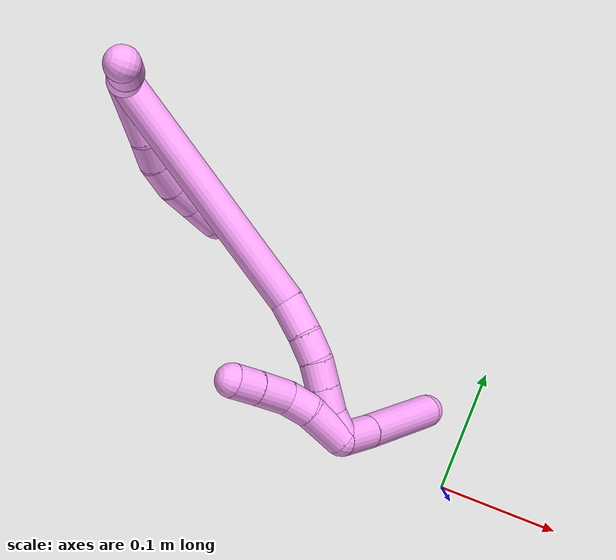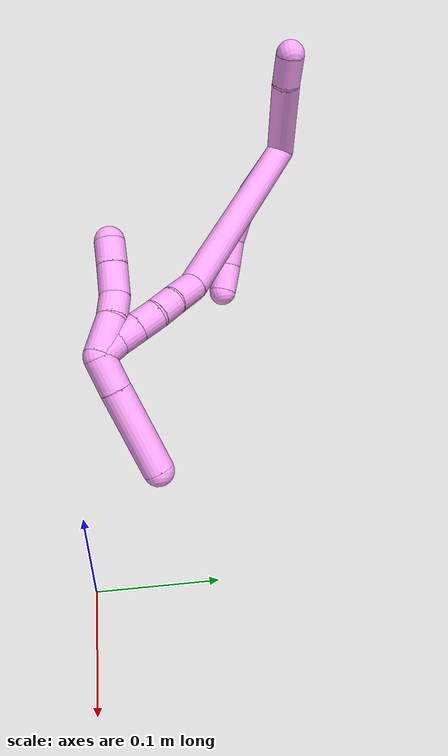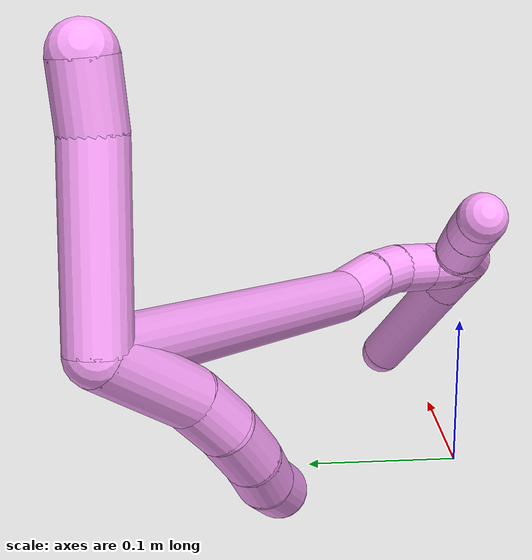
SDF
<sdf version="1.7">
 <world name="default">
  <model name="4">
   <static>0</static>
   <link name="4">
    <collision name="collision-cylinder-e_1_2_8">
     <pose>0.012642 -0.011438 -0.016557 2.53704 0.560908 1.49153</pose>
     <geometry><cylinder><radius>0.0125</radius><length>0.047529</length></cylinder></geometry>
     <surface>
      <friction><ode><mu>1.16</mu><mu2>1.16</mu2><slip1>0</slip1><slip2>0</slip2></ode></friction>
      <contact><ode><kp>1e+06</kp><kd>1</kd><max_vel>0</max_vel><min_depth>0.001</min_depth></ode></contact>
     </surface>
    </collision>
    <visual name="visual-cylinder-e_1_2_8">
     <pose>0.012642 -0.011438 -0.016557 2.53704 0.560908 1.49153</pose>
     <geometry><cylinder><radius>0.0125</radius><length>0.047529</length></cylinder></geometry>
     <material><ambient>1 0.65098 0.996078 1</ambient></material>
    </visual>
    <collision name="collision-cylinder-e_2_8_9">
     <pose>0.029707 -0.030229 -0.041064 2.39521 0.38778 0.929699</pose>
     <geometry><cylinder><radius>0.0125</radius><length>0.023397</length></cylinder></geometry>
     <surface>
      <friction><ode><mu>1.16</mu><mu2>1.16</mu2><slip1>0</slip1><slip2>0</slip2></ode></friction>
      <contact><ode><kp>1e+06</kp><kd>1</kd><max_vel>0</max_vel><min_depth>0.001</min_depth></ode></contact>
     </surface>
    </collision>
    <visual name="visual-cylinder-e_2_8_9">
     <pose>0.029707 -0.030229 -0.041064 2.39521 0.38778 0.929699</pose>
     <geometry><cylinder><radius>0.0125</radius><length>0.023397</length></cylinder></geometry>
     <material><ambient>1 0.65098 0.996078 1</ambient></material>
    </visual>
    <collision name="collision-cylinder-e_3_9_10">
     <pose>0.037611 -0.044721 -0.060256 2.57582 0.255628 0.832553</pose>
     <geometry><cylinder><radius>0.0125</radius><length>0.027526</length></cylinder></geometry>
     <surface>
      <friction><ode><mu>1.16</mu><mu2>1.16</mu2><slip1>0</slip1><slip2>0</slip2></ode></friction>
      <contact><ode><kp>1e+06</kp><kd>1</kd><max_vel>0</max_vel><min_depth>0.001</min_depth></ode></contact>
     </surface>
    </collision>
    <visual name="visual-cylinder-e_3_9_10">
     <pose>0.037611 -0.044721 -0.060256 2.57582 0.255628 0.832553</pose>
     <geometry><cylinder><radius>0.0125</radius><length>0.027526</length></cylinder></geometry>
     <material><ambient>1 0.65098 0.996078 1</ambient></material>
    </visual>
    <collision name="collision-cylinder-e_4_10_11">
     <pose>0.042995 -0.056828 -0.082797 2.72735 0.15307 0.699827</pose>
     <geometry><cylinder><radius>0.0125</radius><length>0.024981</length></cylinder></geometry>
     <surface>
      <friction><ode><mu>1.16</mu><mu2>1.16</mu2><slip1>0</slip1><slip2>0</slip2></ode></friction>
      <contact><ode><kp>1e+06</kp><kd>1</kd><max_vel>0</max_vel><min_depth>0.001</min_depth></ode></contact>
     </surface>
    </collision>
    <visual name="visual-cylinder-e_4_10_11">
     <pose>0.042995 -0.056828 -0.082797 2.72735 0.15307 0.699827</pose>
     <geometry><cylinder><radius>0.0125</radius><length>0.024981</length></cylinder></geometry>
     <material><ambient>1 0.65098 0.996078 1</ambient></material>
    </visual>
    <collision name="collision-cylinder-e_5_11_6">
     <pose>0.048483 -0.065 -0.10648 2.88839 0.273112 1.64729</pose>
     <geometry><cylinder><radius>0.0125</radius><length>0.026567</length></cylinder></geometry>
     <surface>
      <friction><ode><mu>1.16</mu><mu2>1.16</mu2><slip1>0</slip1><slip2>0</slip2></ode></friction>
      <contact><ode><kp>1e+06</kp><kd>1</kd><max_vel>0</max_vel><min_depth>0.001</min_depth></ode></contact>
     </surface>
    </collision>
    <visual name="visual-cylinder-e_5_11_6">
     <pose>0.048483 -0.065 -0.10648 2.88839 0.273112 1.64729</pose>
     <geometry><cylinder><radius>0.0125</radius><length>0.026567</length></cylinder></geometry>
     <material><ambient>1 0.65098 0.996078 1</ambient></material>
    </visual>
    <collision name="collision-cylinder-e_1_2_12">
     <pose>0.013869 0.031736 0.013078 -1.17992 0.38401 -0.258845</pose>
     <geometry><cylinder><radius>0.0125</radius><length>0.074041</length></cylinder></geometry>
     <surface>
      <friction><ode><mu>1.16</mu><mu2>1.16</mu2><slip1>0</slip1><slip2>0</slip2></ode></friction>
      <contact><ode><kp>1e+06</kp><kd>1</kd><max_vel>0</max_vel><min_depth>0.001</min_depth></ode></contact>
     </surface>
    </collision>
    <visual name="visual-cylinder-e_1_2_12">
     <pose>0.013869 0.031736 0.013078 -1.17992 0.38401 -0.258845</pose>
     <geometry><cylinder><radius>0.0125</radius><length>0.074041</length></cylinder></geometry>
     <material><ambient>1 0.65098 0.996078 1</ambient></material>
    </visual>
    <collision name="collision-cylinder-e_2_12_5">
     <pose>0.03102 0.074366 0.0324 -1.0503 0.255579 -0.148625</pose>
     <geometry><cylinder><radius>0.0125</radius><length>0.025959</length></cylinder></geometry>
     <surface>
      <friction><ode><mu>1.16</mu><mu2>1.16</mu2><slip1>0</slip1><slip2>0</slip2></ode></friction>
      <contact><ode><kp>1e+06</kp><kd>1</kd><max_vel>0</max_vel><min_depth>0.001</min_depth></ode></contact>
     </surface>
    </collision>
    <visual name="visual-cylinder-e_2_12_5">
     <pose>0.03102 0.074366 0.0324 -1.0503 0.255579 -0.148625</pose>
     <geometry><cylinder><radius>0.0125</radius><length>0.025959</length></cylinder></geometry>
     <material><ambient>1 0.65098 0.996078 1</ambient></material>
    </visual>
    <collision name="collision-cylinder-e_1_2_13">
     <pose>0.062427 0.001452 -0.072707 -3.12162 0.709373 -3.08768</pose>
     <geometry><cylinder><radius>0.0125</radius><length>0.191683</length></cylinder></geometry>
     <surface>
      <friction><ode><mu>1.16</mu><mu2>1.16</mu2><slip1>0</slip1><slip2>0</slip2></ode></friction>
      <contact><ode><kp>1e+06</kp><kd>1</kd><max_vel>0</max_vel><min_depth>0.001</min_depth></ode></contact>
     </surface>
    </collision>
    <visual name="visual-cylinder-e_1_2_13">
     <pose>0.062427 0.001452 -0.072707 -3.12162 0.709373 -3.08768</pose>
     <geometry><cylinder><radius>0.0125</radius><length>0.191683</length></cylinder></geometry>
     <material><ambient>1 0.65098 0.996078 1</ambient></material>
    </visual>
    <collision name="collision-cylinder-e_2_13_14">
     <pose>0.136331 0.005173 -0.152951 -2.84922 0.969668 -2.59649</pose>
     <geometry><cylinder><radius>0.0125</radius><length>0.027832</length></cylinder></geometry>
     <surface>
      <friction><ode><mu>1.16</mu><mu2>1.16</mu2><slip1>0</slip1><slip2>0</slip2></ode></friction>
      <contact><ode><kp>1e+06</kp><kd>1</kd><max_vel>0</max_vel><min_depth>0.001</min_depth></ode></contact>
     </surface>
    </collision>
    <visual name="visual-cylinder-e_2_13_14">
     <pose>0.136331 0.005173 -0.152951 -2.84922 0.969668 -2.59649</pose>
     <geometry><cylinder><radius>0.0125</radius><length>0.027832</length></cylinder></geometry>
     <material><ambient>1 0.65098 0.996078 1</ambient></material>
    </visual>
    <collision name="collision-cylinder-e_3_14_15">
     <pose>0.15614 0.007514 -0.166161 -3.12879 0.972958 -3.11739</pose>
     <geometry><cylinder><radius>0.0125</radius><length>0.020163</length></cylinder></geometry>
     <surface>
      <friction><ode><mu>1.16</mu><mu2>1.16</mu2><slip1>0</slip1><slip2>0</slip2></ode></friction>
      <contact><ode><kp>1e+06</kp><kd>1</kd><max_vel>0</max_vel><min_depth>0.001</min_depth></ode></contact>
     </surface>
    </collision>
    <visual name="visual-cylinder-e_3_14_15">
     <pose>0.15614 0.007514 -0.166161 -3.12879 0.972958 -3.11739</pose>
     <geometry><cylinder><radius>0.0125</radius><length>0.020163</length></cylinder></geometry>
     <material><ambient>1 0.65098 0.996078 1</ambient></material>
    </visual>
    <collision name="collision-cylinder-e_4_15_16">
     <pose>0.173026 0.005657 -0.17687 2.77562 1.00827 2.49431</pose>
     <geometry><cylinder><radius>0.0125</radius><length>0.020222</length></cylinder></geometry>
     <surface>
      <friction><ode><mu>1.16</mu><mu2>1.16</mu2><slip1>0</slip1><slip2>0</slip2></ode></friction>
      <contact><ode><kp>1e+06</kp><kd>1</kd><max_vel>0</max_vel><min_depth>0.001</min_depth></ode></contact>
     </surface>
    </collision>
    <visual name="visual-cylinder-e_4_15_16">
     <pose>0.173026 0.005657 -0.17687 2.77562 1.00827 2.49431</pose>
     <geometry><cylinder><radius>0.0125</radius><length>0.020222</length></cylinder></geometry>
     <material><ambient>1 0.65098 0.996078 1</ambient></material>
    </visual>
    <collision name="collision-cylinder-e_5_16_17">
     <pose>0.19008 0.001819 -0.186915 2.77758 1.00817 2.49754</pose>
     <geometry><cylinder><radius>0.0125</radius><length>0.0201</length></cylinder></geometry>
     <surface>
      <friction><ode><mu>1.16</mu><mu2>1.16</mu2><slip1>0</slip1><slip2>0</slip2></ode></friction>
      <contact><ode><kp>1e+06</kp><kd>1</kd><max_vel>0</max_vel><min_depth>0.001</min_depth></ode></contact>
     </surface>
    </collision>
    <visual name="visual-cylinder-e_5_16_17">
     <pose>0.19008 0.001819 -0.186915 2.77758 1.00817 2.49754</pose>
     <geometry><cylinder><radius>0.0125</radius><length>0.0201</length></cylinder></geometry>
     <material><ambient>1 0.65098 0.996078 1</ambient></material>
    </visual>
    <collision name="collision-cylinder-e_6_17_1">
     <pose>0.206647 -6e-05 -0.197835 -3.13662 0.938445 -3.13178</pose>
     <geometry><cylinder><radius>0.0125</radius><length>0.020001</length></cylinder></geometry>
     <surface>
      <friction><ode><mu>1.16</mu><mu2>1.16</mu2><slip1>0</slip1><slip2>0</slip2></ode></friction>
      <contact><ode><kp>1e+06</kp><kd>1</kd><max_vel>0</max_vel><min_depth>0.001</min_depth></ode></contact>
     </surface>
    </collision>
    <visual name="visual-cylinder-e_6_17_1">
     <pose>0.206647 -6e-05 -0.197835 -3.13662 0.938445 -3.13178</pose>
     <geometry><cylinder><radius>0.0125</radius><length>0.020001</length></cylinder></geometry>
     <material><ambient>1 0.65098 0.996078 1</ambient></material>
    </visual>
    <collision name="collision-cylinder-e_1_1_18">
     <pose>0.208838 -0.002662 -0.216526 2.93855 -0.423135 -2.25583</pose>
     <geometry><cylinder><radius>0.0125</radius><length>0.028621</length></cylinder></geometry>
     <surface>
      <friction><ode><mu>1.16</mu><mu2>1.16</mu2><slip1>0</slip1><slip2>0</slip2></ode></friction>
      <contact><ode><kp>1e+06</kp><kd>1</kd><max_vel>0</max_vel><min_depth>0.001</min_depth></ode></contact>
     </surface>
    </collision>
    <visual name="visual-cylinder-e_1_1_18">
     <pose>0.208838 -0.002662 -0.216526 2.93855 -0.423135 -2.25583</pose>
     <geometry><cylinder><radius>0.0125</radius><length>0.028621</length></cylinder></geometry>
     <material><ambient>1 0.65098 0.996078 1</ambient></material>
    </visual>
    <collision name="collision-cylinder-e_2_18_4">
     <pose>0.18702 -0.012771 -0.26035 2.90521 -0.463037 -2.2084</pose>
     <geometry><cylinder><radius>0.0125</radius><length>0.071379</length></cylinder></geometry>
     <surface>
      <friction><ode><mu>1.16</mu><mu2>1.16</mu2><slip1>0</slip1><slip2>0</slip2></ode></friction>
      <contact><ode><kp>1e+06</kp><kd>1</kd><max_vel>0</max_vel><min_depth>0.001</min_depth></ode></contact>
     </surface>
    </collision>
    <visual name="visual-cylinder-e_2_18_4">
     <pose>0.18702 -0.012771 -0.26035 2.90521 -0.463037 -2.2084</pose>
     <geometry><cylinder><radius>0.0125</radius><length>0.071379</length></cylinder></geometry>
     <material><ambient>1 0.65098 0.996078 1</ambient></material>
    </visual>
    <collision name="collision-cylinder-e_1_1_19">
     <pose>0.207632 0.001041 -0.188797 -0.071577 -0.441406 0.016065</pose>
     <geometry><cylinder><radius>0.0125</radius><length>0.033152</length></cylinder></geometry>
     <surface>
      <friction><ode><mu>1.16</mu><mu2>1.16</mu2><slip1>0</slip1><slip2>0</slip2></ode></friction>
      <contact><ode><kp>1e+06</kp><kd>1</kd><max_vel>0</max_vel><min_depth>0.001</min_depth></ode></contact>
     </surface>
    </collision>
    <visual name="visual-cylinder-e_1_1_19">
     <pose>0.207632 0.001041 -0.188797 -0.071577 -0.441406 0.016065</pose>
     <geometry><cylinder><radius>0.0125</radius><length>0.033152</length></cylinder></geometry>
     <material><ambient>1 0.65098 0.996078 1</ambient></material>
    </visual>
    <collision name="collision-cylinder-e_2_19_20">
     <pose>0.19747 0.001133 -0.164183 0.101053 -0.307107 -0.015653</pose>
     <geometry><cylinder><radius>0.0125</radius><length>0.020382</length></cylinder></geometry>
     <surface>
      <friction><ode><mu>1.16</mu><mu2>1.16</mu2><slip1>0</slip1><slip2>0</slip2></ode></friction>
      <contact><ode><kp>1e+06</kp><kd>1</kd><max_vel>0</max_vel><min_depth>0.001</min_depth></ode></contact>
     </surface>
    </collision>
    <visual name="visual-cylinder-e_2_19_20">
     <pose>0.19747 0.001133 -0.164183 0.101053 -0.307107 -0.015653</pose>
     <geometry><cylinder><radius>0.0125</radius><length>0.020382</length></cylinder></geometry>
     <material><ambient>1 0.65098 0.996078 1</ambient></material>
    </visual>
    <collision name="collision-cylinder-e_3_20_21">
     <pose>0.193986 0.00122 -0.141654 -0.082807 -0.031223 0.001294</pose>
     <geometry><cylinder><radius>0.0125</radius><length>0.02583</length></cylinder></geometry>
     <surface>
      <friction><ode><mu>1.16</mu><mu2>1.16</mu2><slip1>0</slip1><slip2>0</slip2></ode></friction>
      <contact><ode><kp>1e+06</kp><kd>1</kd><max_vel>0</max_vel><min_depth>0.001</min_depth></ode></contact>
     </surface>
    </collision>
    <visual name="visual-cylinder-e_3_20_21">
     <pose>0.193986 0.00122 -0.141654 -0.082807 -0.031223 0.001294</pose>
     <geometry><cylinder><radius>0.0125</radius><length>0.02583</length></cylinder></geometry>
     <material><ambient>1 0.65098 0.996078 1</ambient></material>
    </visual>
    <collision name="collision-cylinder-e_4_21_3">
     <pose>0.193381 0.002869 -0.11849 -0.056351 -0.019573 0.000552</pose>
     <geometry><cylinder><radius>0.0125</radius><length>0.020636</length></cylinder></geometry>
     <surface>
      <friction><ode><mu>1.16</mu><mu2>1.16</mu2><slip1>0</slip1><slip2>0</slip2></ode></friction>
      <contact><ode><kp>1e+06</kp><kd>1</kd><max_vel>0</max_vel><min_depth>0.001</min_depth></ode></contact>
     </surface>
    </collision>
    <visual name="visual-cylinder-e_4_21_3">
     <pose>0.193381 0.002869 -0.11849 -0.056351 -0.019573 0.000552</pose>
     <geometry><cylinder><radius>0.0125</radius><length>0.020636</length></cylinder></geometry>
     <material><ambient>1 0.65098 0.996078 1</ambient></material>
    </visual>
    <collision name="collision-sphere-3">
     <pose>0.193179 0.00345 -0.108191 0 -0 0</pose>
     <geometry><sphere><radius>0.0125</radius></sphere></geometry>
     <surface>
      <friction><ode><mu>1.16</mu><mu2>1.16</mu2><slip1>0</slip1><slip2>0</slip2></ode></friction>
      <contact><ode><kp>1e+06</kp><kd>1</kd><max_vel>0</max_vel><min_depth>0.001</min_depth></ode></contact>
     </surface>
    </collision>
    <visual name="visual-sphere-3">
     <pose>0.193179 0.00345 -0.108191 0 -0 0</pose>
     <geometry><sphere><radius>0.0125</radius></sphere></geometry>
     <material><ambient>1 0.65098 0.996078 1</ambient></material>
    </visual>
    <collision name="collision-sphere-21">
     <pose>0.193583 0.002288 -0.12879 0 -0 0</pose>
     <geometry><sphere><radius>0.0125</radius></sphere></geometry>
     <surface>
      <friction><ode><mu>1.16</mu><mu2>1.16</mu2><slip1>0</slip1><slip2>0</slip2></ode></friction>
      <contact><ode><kp>1e+06</kp><kd>1</kd><max_vel>0</max_vel><min_depth>0.001</min_depth></ode></contact>
     </surface>
    </collision>
    <visual name="visual-sphere-21">
     <pose>0.193583 0.002288 -0.12879 0 -0 0</pose>
     <geometry><sphere><radius>0.0125</radius></sphere></geometry>
     <material><ambient>1 0.65098 0.996078 1</ambient></material>
    </visual>
    <collision name="collision-sphere-20">
     <pose>0.194389 0.000153 -0.154519 0 -0 0</pose>
     <geometry><sphere><radius>0.0125</radius></sphere></geometry>
     <surface>
      <friction><ode><mu>1.16</mu><mu2>1.16</mu2><slip1>0</slip1><slip2>0</slip2></ode></friction>
      <contact><ode><kp>1e+06</kp><kd>1</kd><max_vel>0</max_vel><min_depth>0.001</min_depth></ode></contact>
     </surface>
    </collision>
    <visual name="visual-sphere-20">
     <pose>0.194389 0.000153 -0.154519 0 -0 0</pose>
     <geometry><sphere><radius>0.0125</radius></sphere></geometry>
     <material><ambient>1 0.65098 0.996078 1</ambient></material>
    </visual>
    <collision name="collision-sphere-19">
     <pose>0.200551 0.002113 -0.173848 0 -0 0</pose>
     <geometry><sphere><radius>0.0125</radius></sphere></geometry>
     <surface>
      <friction><ode><mu>1.16</mu><mu2>1.16</mu2><slip1>0</slip1><slip2>0</slip2></ode></friction>
      <contact><ode><kp>1e+06</kp><kd>1</kd><max_vel>0</max_vel><min_depth>0.001</min_depth></ode></contact>
     </surface>
    </collision>
    <visual name="visual-sphere-19">
     <pose>0.200551 0.002113 -0.173848 0 -0 0</pose>
     <geometry><sphere><radius>0.0125</radius></sphere></geometry>
     <material><ambient>1 0.65098 0.996078 1</ambient></material>
    </visual>
    <collision name="collision-sphere-6">
     <pose>0.052065 -0.068205 -0.118863 0 -0 0</pose>
     <geometry><sphere><radius>0.0125</radius></sphere></geometry>
     <surface>
      <friction><ode><mu>1.16</mu><mu2>1.16</mu2><slip1>0</slip1><slip2>0</slip2></ode></friction>
      <contact><ode><kp>1e+06</kp><kd>1</kd><max_vel>0</max_vel><min_depth>0.001</min_depth></ode></contact>
     </surface>
    </collision>
    <visual name="visual-sphere-6">
     <pose>0.052065 -0.068205 -0.118863 0 -0 0</pose>
     <geometry><sphere><radius>0.0125</radius></sphere></geometry>
     <material><ambient>1 0.65098 0.996078 1</ambient></material>
    </visual>
    <collision name="collision-sphere-11">
     <pose>0.0449 -0.061796 -0.094097 0 -0 0</pose>
     <geometry><sphere><radius>0.0125</radius></sphere></geometry>
     <surface>
      <friction><ode><mu>1.16</mu><mu2>1.16</mu2><slip1>0</slip1><slip2>0</slip2></ode></friction>
      <contact><ode><kp>1e+06</kp><kd>1</kd><max_vel>0</max_vel><min_depth>0.001</min_depth></ode></contact>
     </surface>
    </collision>
    <visual name="visual-sphere-11">
     <pose>0.0449 -0.061796 -0.094097 0 -0 0</pose>
     <geometry><sphere><radius>0.0125</radius></sphere></geometry>
     <material><ambient>1 0.65098 0.996078 1</ambient></material>
    </visual>
    <collision name="collision-sphere-10">
     <pose>0.041091 -0.051859 -0.071496 0 -0 0</pose>
     <geometry><sphere><radius>0.0125</radius></sphere></geometry>
     <surface>
      <friction><ode><mu>1.16</mu><mu2>1.16</mu2><slip1>0</slip1><slip2>0</slip2></ode></friction>
      <contact><ode><kp>1e+06</kp><kd>1</kd><max_vel>0</max_vel><min_depth>0.001</min_depth></ode></contact>
     </surface>
    </collision>
    <visual name="visual-sphere-10">
     <pose>0.041091 -0.051859 -0.071496 0 -0 0</pose>
     <geometry><sphere><radius>0.0125</radius></sphere></geometry>
     <material><ambient>1 0.65098 0.996078 1</ambient></material>
    </visual>
    <collision name="collision-sphere-9">
     <pose>0.034131 -0.037583 -0.049015 0 -0 0</pose>
     <geometry><sphere><radius>0.0125</radius></sphere></geometry>
     <surface>
      <friction><ode><mu>1.16</mu><mu2>1.16</mu2><slip1>0</slip1><slip2>0</slip2></ode></friction>
      <contact><ode><kp>1e+06</kp><kd>1</kd><max_vel>0</max_vel><min_depth>0.001</min_depth></ode></contact>
     </surface>
    </collision>
    <visual name="visual-sphere-9">
     <pose>0.034131 -0.037583 -0.049015 0 -0 0</pose>
     <geometry><sphere><radius>0.0125</radius></sphere></geometry>
     <material><ambient>1 0.65098 0.996078 1</ambient></material>
    </visual>
    <collision name="collision-sphere-2">
     <geometry><sphere><radius>0.0125</radius></sphere></geometry>
     <surface>
      <friction><ode><mu>1.16</mu><mu2>1.16</mu2><slip1>0</slip1><slip2>0</slip2></ode></friction>
      <contact><ode><kp>1e+06</kp><kd>1</kd><max_vel>0</max_vel><min_depth>0.001</min_depth></ode></contact>
     </surface>
    </collision>
    <visual name="visual-sphere-2">
     <geometry><sphere><radius>0.0125</radius></sphere></geometry>
     <material><ambient>1 0.65098 0.996078 1</ambient></material>
    </visual>
    <collision name="collision-sphere-8">
     <pose>0.025283 -0.022876 -0.033113 0 -0 0</pose>
     <geometry><sphere><radius>0.0125</radius></sphere></geometry>
     <surface>
      <friction><ode><mu>1.16</mu><mu2>1.16</mu2><slip1>0</slip1><slip2>0</slip2></ode></friction>
      <contact><ode><kp>1e+06</kp><kd>1</kd><max_vel>0</max_vel><min_depth>0.001</min_depth></ode></contact>
     </surface>
    </collision>
    <visual name="visual-sphere-8">
     <pose>0.025283 -0.022876 -0.033113 0 -0 0</pose>
     <geometry><sphere><radius>0.0125</radius></sphere></geometry>
     <material><ambient>1 0.65098 0.996078 1</ambient></material>
    </visual>
    <collision name="collision-sphere-12">
     <pose>0.027739 0.063471 0.026155 0 -0 0</pose>
     <geometry><sphere><radius>0.0125</radius></sphere></geometry>
     <surface>
      <friction><ode><mu>1.16</mu><mu2>1.16</mu2><slip1>0</slip1><slip2>0</slip2></ode></friction>
      <contact><ode><kp>1e+06</kp><kd>1</kd><max_vel>0</max_vel><min_depth>0.001</min_depth></ode></contact>
     </surface>
    </collision>
    <visual name="visual-sphere-12">
     <pose>0.027739 0.063471 0.026155 0 -0 0</pose>
     <geometry><sphere><radius>0.0125</radius></sphere></geometry>
     <material><ambient>1 0.65098 0.996078 1</ambient></material>
    </visual>
    <collision name="collision-sphere-5">
     <pose>0.034301 0.085261 0.038645 0 -0 0</pose>
     <geometry><sphere><radius>0.0125</radius></sphere></geometry>
     <surface>
      <friction><ode><mu>1.16</mu><mu2>1.16</mu2><slip1>0</slip1><slip2>0</slip2></ode></friction>
      <contact><ode><kp>1e+06</kp><kd>1</kd><max_vel>0</max_vel><min_depth>0.001</min_depth></ode></contact>
     </surface>
    </collision>
    <visual name="visual-sphere-5">
     <pose>0.034301 0.085261 0.038645 0 -0 0</pose>
     <geometry><sphere><radius>0.0125</radius></sphere></geometry>
     <material><ambient>1 0.65098 0.996078 1</ambient></material>
    </visual>
    <collision name="collision-sphere-13">
     <pose>0.124854 0.002905 -0.145414 0 -0 0</pose>
     <geometry><sphere><radius>0.0125</radius></sphere></geometry>
     <surface>
      <friction><ode><mu>1.16</mu><mu2>1.16</mu2><slip1>0</slip1><slip2>0</slip2></ode></friction>
      <contact><ode><kp>1e+06</kp><kd>1</kd><max_vel>0</max_vel><min_depth>0.001</min_depth></ode></contact>
     </surface>
    </collision>
    <visual name="visual-sphere-13">
     <pose>0.124854 0.002905 -0.145414 0 -0 0</pose>
     <geometry><sphere><radius>0.0125</radius></sphere></geometry>
     <material><ambient>1 0.65098 0.996078 1</ambient></material>
    </visual>
    <collision name="collision-sphere-14">
     <pose>0.147807 0.007441 -0.160487 0 -0 0</pose>
     <geometry><sphere><radius>0.0125</radius></sphere></geometry>
     <surface>
      <friction><ode><mu>1.16</mu><mu2>1.16</mu2><slip1>0</slip1><slip2>0</slip2></ode></friction>
      <contact><ode><kp>1e+06</kp><kd>1</kd><max_vel>0</max_vel><min_depth>0.001</min_depth></ode></contact>
     </surface>
    </collision>
    <visual name="visual-sphere-14">
     <pose>0.147807 0.007441 -0.160487 0 -0 0</pose>
     <geometry><sphere><radius>0.0125</radius></sphere></geometry>
     <material><ambient>1 0.65098 0.996078 1</ambient></material>
    </visual>
    <collision name="collision-sphere-15">
     <pose>0.164473 0.007587 -0.171835 0 -0 0</pose>
     <geometry><sphere><radius>0.0125</radius></sphere></geometry>
     <surface>
      <friction><ode><mu>1.16</mu><mu2>1.16</mu2><slip1>0</slip1><slip2>0</slip2></ode></friction>
      <contact><ode><kp>1e+06</kp><kd>1</kd><max_vel>0</max_vel><min_depth>0.001</min_depth></ode></contact>
     </surface>
    </collision>
    <visual name="visual-sphere-15">
     <pose>0.164473 0.007587 -0.171835 0 -0 0</pose>
     <geometry><sphere><radius>0.0125</radius></sphere></geometry>
     <material><ambient>1 0.65098 0.996078 1</ambient></material>
    </visual>
    <collision name="collision-sphere-16">
     <pose>0.181579 0.003727 -0.181906 0 -0 0</pose>
     <geometry><sphere><radius>0.0125</radius></sphere></geometry>
     <surface>
      <friction><ode><mu>1.16</mu><mu2>1.16</mu2><slip1>0</slip1><slip2>0</slip2></ode></friction>
      <contact><ode><kp>1e+06</kp><kd>1</kd><max_vel>0</max_vel><min_depth>0.001</min_depth></ode></contact>
     </surface>
    </collision>
    <visual name="visual-sphere-16">
     <pose>0.181579 0.003727 -0.181906 0 -0 0</pose>
     <geometry><sphere><radius>0.0125</radius></sphere></geometry>
     <material><ambient>1 0.65098 0.996078 1</ambient></material>
    </visual>
    <collision name="collision-sphere-17">
     <pose>0.19858 -9e-05 -0.191925 0 -0 0</pose>
     <geometry><sphere><radius>0.0125</radius></sphere></geometry>
     <surface>
      <friction><ode><mu>1.16</mu><mu2>1.16</mu2><slip1>0</slip1><slip2>0</slip2></ode></friction>
      <contact><ode><kp>1e+06</kp><kd>1</kd><max_vel>0</max_vel><min_depth>0.001</min_depth></ode></contact>
     </surface>
    </collision>
    <visual name="visual-sphere-17">
     <pose>0.19858 -9e-05 -0.191925 0 -0 0</pose>
     <geometry><sphere><radius>0.0125</radius></sphere></geometry>
     <material><ambient>1 0.65098 0.996078 1</ambient></material>
    </visual>
    <collision name="collision-sphere-1">
     <pose>0.214714 -3.1e-05 -0.203746 0 -0 0</pose>
     <geometry><sphere><radius>0.0125</radius></sphere></geometry>
     <surface>
      <friction><ode><mu>1.16</mu><mu2>1.16</mu2><slip1>0</slip1><slip2>0</slip2></ode></friction>
      <contact><ode><kp>1e+06</kp><kd>1</kd><max_vel>0</max_vel><min_depth>0.001</min_depth></ode></contact>
     </surface>
    </collision>
    <visual name="visual-sphere-1">
     <pose>0.214714 -3.1e-05 -0.203746 0 -0 0</pose>
     <geometry><sphere><radius>0.0125</radius></sphere></geometry>
     <material><ambient>1 0.65098 0.996078 1</ambient></material>
    </visual>
    <collision name="collision-sphere-18">
     <pose>0.202961 -0.005293 -0.229306 0 -0 0</pose>
     <geometry><sphere><radius>0.0125</radius></sphere></geometry>
     <surface>
      <friction><ode><mu>1.16</mu><mu2>1.16</mu2><slip1>0</slip1><slip2>0</slip2></ode></friction>
      <contact><ode><kp>1e+06</kp><kd>1</kd><max_vel>0</max_vel><min_depth>0.001</min_depth></ode></contact>
     </surface>
    </collision>
    <visual name="visual-sphere-18">
     <pose>0.202961 -0.005293 -0.229306 0 -0 0</pose>
     <geometry><sphere><radius>0.0125</radius></sphere></geometry>
     <material><ambient>1 0.65098 0.996078 1</ambient></material>
    </visual>
    <collision name="collision-sphere-4">
     <pose>0.171079 -0.020249 -0.291393 0 -0 0</pose>
     <geometry><sphere><radius>0.0125</radius></sphere></geometry>
     <surface>
      <friction><ode><mu>1.16</mu><mu2>1.16</mu2><slip1>0</slip1><slip2>0</slip2></ode></friction>
      <contact><ode><kp>1e+06</kp><kd>1</kd><max_vel>0</max_vel><min_depth>0.001</min_depth></ode></contact>
     </surface>
    </collision>
    <visual name="visual-sphere-4">
     <pose>0.171079 -0.020249 -0.291393 0 -0 0</pose>
     <geometry><sphere><radius>0.0125</radius></sphere></geometry>
     <material><ambient>1 0.65098 0.996078 1</ambient></material>
    </visual>
    <inertial>
     <pose>0.101497 -0.001952 -0.106425 0 -0 0</pose>
     <mass>0.75</mass>
     <inertia>
      <ixx>-0.000449</ixx>
      <ixy>0</ixy>
      <ixz>0</ixz>
      <iyy>0.000611</iyy>
      <iyz>0</iyz>
      <izz>-0.000446</izz>
     </inertia>
    </inertial>
   </link>
   <pose>-0.329533 0.197483 0.206999 1.00629 -0.317653 -1.28074</pose>
  </model>
 </world>
</sdf>
